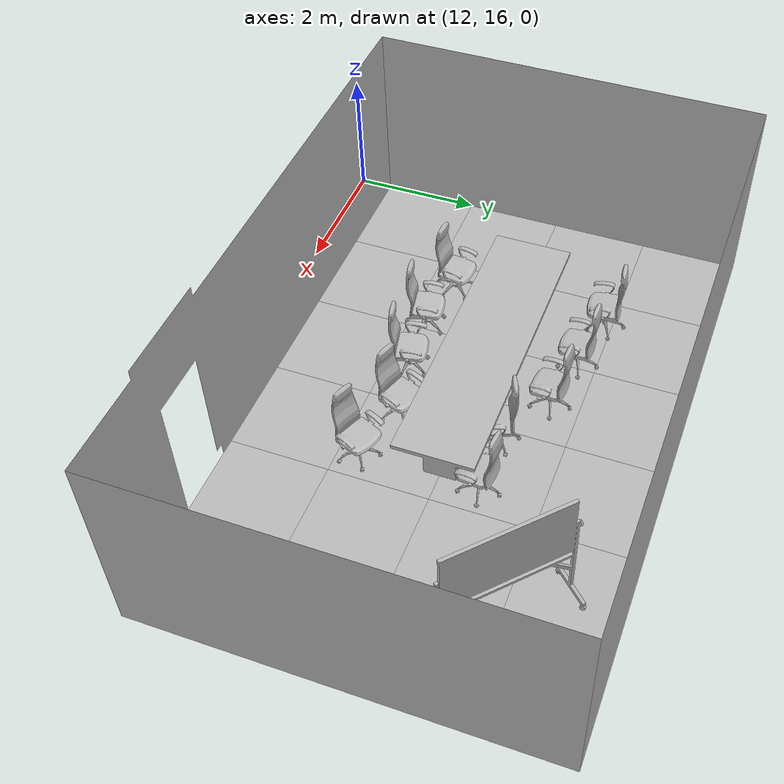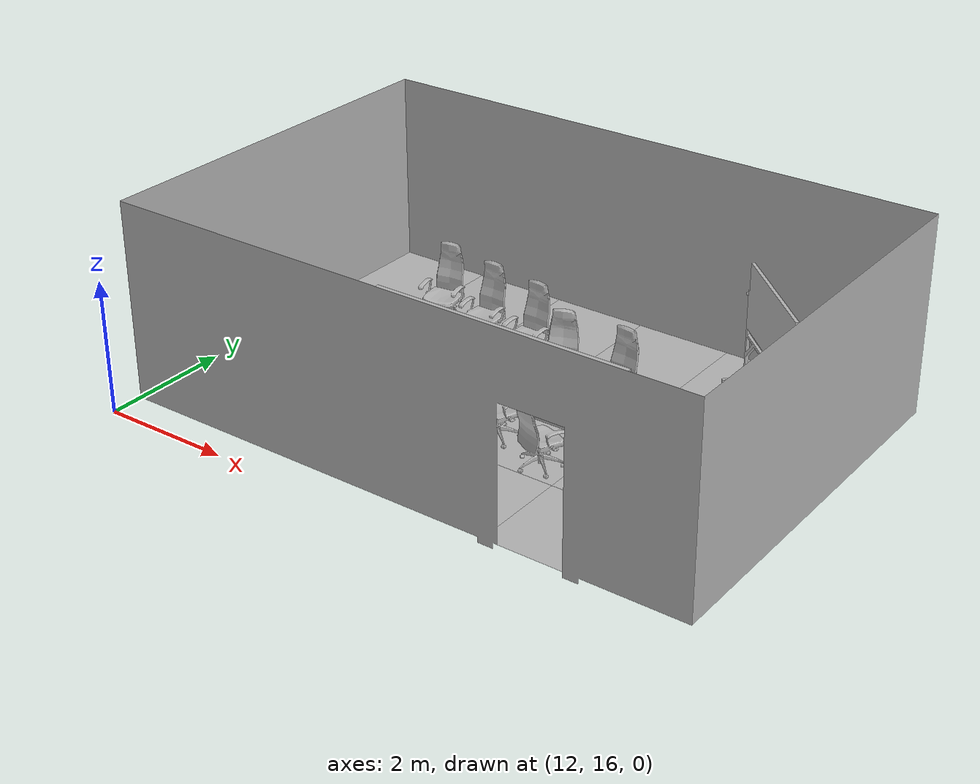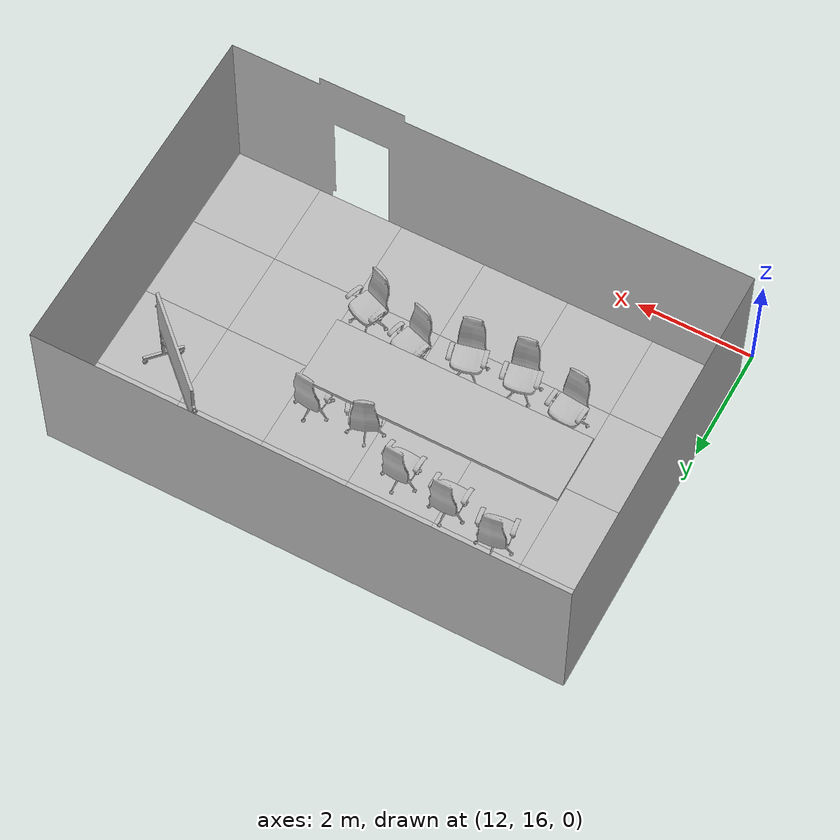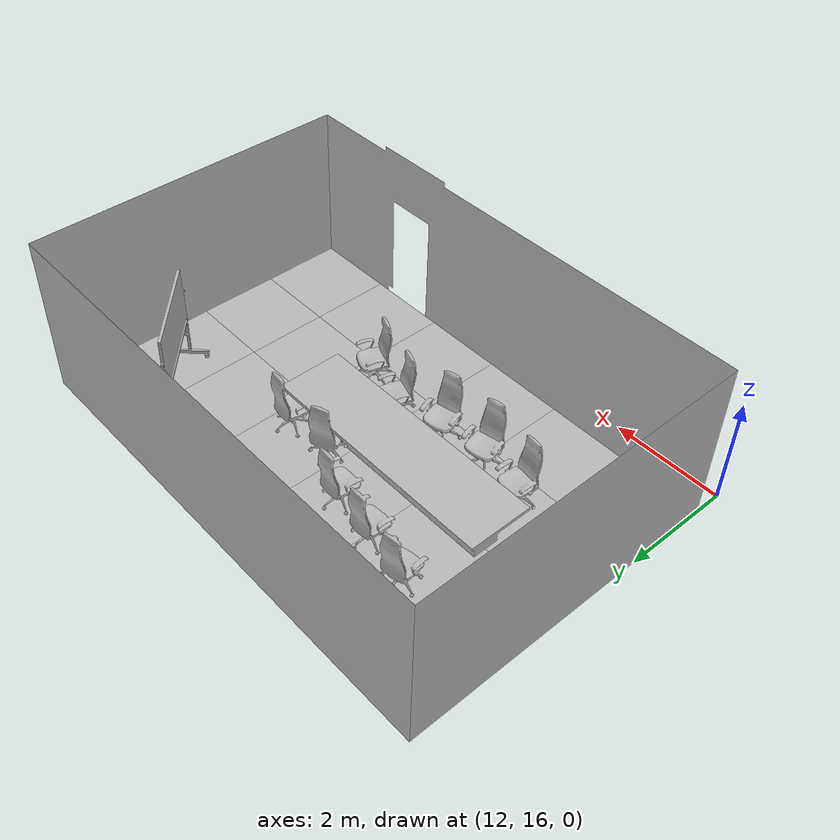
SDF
<sdf version="1.7">
 <world name="default">
  <model name="PublicMeetingRoomA">
   <static>1</static>
   <pose>18 16.5 0 0 -0 3.14159</pose>
   <link name="link">
    <collision name="right_of_door">
     <pose>2.88 0.05 1.5 0 -0 0</pose>
     <geometry><box><size>6.24 0.1 3</size></box></geometry>
    </collision>
    <collision name="left_of_door">
     <pose>-2.13 0.05 1.5 0 -0 0</pose>
     <geometry><box><size>1.74 0.1 3</size></box></geometry>
    </collision>
    <collision name="top_of_door">
     <pose>-0.75 0.05 2.55 0 -0 0</pose>
     <geometry><box><size>1.5 0.1 0.9</size></box></geometry>
    </collision>
    <collision name="right">
     <pose>6.05 -3 1.5 0 -0 0</pose>
     <geometry><box><size>0.1 6 3</size></box></geometry>
    </collision>
    <collision name="left">
     <pose>-3.05 -3 1.5 0 -0 0</pose>
     <geometry><box><size>0.1 6 3</size></box></geometry>
    </collision>
    <collision name="back">
     <pose>1.5 -6.05 1.5 0 -0 0</pose>
     <geometry><box><size>9 0.1 3</size></box></geometry>
    </collision>
    <visual name="visual">
     <geometry>
      <mesh><uri>model://media/meshes/meeting_room_large.obj</uri><scale>0.01 0.01 0.01</scale></mesh>
     </geometry>
    </visual>
    <visual name="floor_-1_-3">
     <pose>-1.5 -4.5 0 0 -0 0</pose>
     <geometry><mesh><uri>model://media/meshes/carpet.obj</uri><scale>0.01 0.01 0.01</scale></mesh></geometry>
    </visual>
    <visual name="floor_-1_-2">
     <pose>-1.5 -3 0 0 -0 0</pose>
     <geometry><mesh><uri>model://media/meshes/carpet.obj</uri><scale>0.01 0.01 0.01</scale></mesh></geometry>
    </visual>
    <visual name="floor_-1_-1">
     <pose>-1.5 -1.5 0 0 -0 0</pose>
     <geometry><mesh><uri>model://media/meshes/carpet.obj</uri><scale>0.01 0.01 0.01</scale></mesh></geometry>
    </visual>
    <visual name="floor_-1_0">
     <pose>-1.5 0 0 0 -0 0</pose>
     <geometry><mesh><uri>model://media/meshes/carpet.obj</uri><scale>0.01 0.01 0.01</scale></mesh></geometry>
    </visual>
    <visual name="floor_0_-3">
     <pose>0 -4.5 0 0 -0 0</pose>
     <geometry><mesh><uri>model://media/meshes/carpet.obj</uri><scale>0.01 0.01 0.01</scale></mesh></geometry>
    </visual>
    <visual name="floor_0_-2">
     <pose>0 -3 0 0 -0 0</pose>
     <geometry><mesh><uri>model://media/meshes/carpet.obj</uri><scale>0.01 0.01 0.01</scale></mesh></geometry>
    </visual>
    <visual name="floor_0_-1">
     <pose>0 -1.5 0 0 -0 0</pose>
     <geometry><mesh><uri>model://media/meshes/carpet.obj</uri><scale>0.01 0.01 0.01</scale></mesh></geometry>
    </visual>
    <visual name="floor_0_0">
     <geometry><mesh><uri>model://media/meshes/carpet.obj</uri><scale>0.01 0.01 0.01</scale></mesh></geometry>
    </visual>
    <visual name="floor_1_-3">
     <pose>1.5 -4.5 0 0 -0 0</pose>
     <geometry><mesh><uri>model://media/meshes/carpet.obj</uri><scale>0.01 0.01 0.01</scale></mesh></geometry>
    </visual>
    <visual name="floor_1_-2">
     <pose>1.5 -3 0 0 -0 0</pose>
     <geometry><mesh><uri>model://media/meshes/carpet.obj</uri><scale>0.01 0.01 0.01</scale></mesh></geometry>
    </visual>
    <visual name="floor_1_-1">
     <pose>1.5 -1.5 0 0 -0 0</pose>
     <geometry><mesh><uri>model://media/meshes/carpet.obj</uri><scale>0.01 0.01 0.01</scale></mesh></geometry>
    </visual>
    <visual name="floor_1_0">
     <pose>1.5 0 0 0 -0 0</pose>
     <geometry><mesh><uri>model://media/meshes/carpet.obj</uri><scale>0.01 0.01 0.01</scale></mesh></geometry>
    </visual>
    <visual name="floor_2_-3">
     <pose>3 -4.5 0 0 -0 0</pose>
     <geometry><mesh><uri>model://media/meshes/carpet.obj</uri><scale>0.01 0.01 0.01</scale></mesh></geometry>
    </visual>
    <visual name="floor_2_-2">
     <pose>3 -3 0 0 -0 0</pose>
     <geometry><mesh><uri>model://media/meshes/carpet.obj</uri><scale>0.01 0.01 0.01</scale></mesh></geometry>
    </visual>
    <visual name="floor_2_-1">
     <pose>3 -1.5 0 0 -0 0</pose>
     <geometry><mesh><uri>model://media/meshes/carpet.obj</uri><scale>0.01 0.01 0.01</scale></mesh></geometry>
    </visual>
    <visual name="floor_2_0">
     <pose>3 0 0 0 -0 0</pose>
     <geometry><mesh><uri>model://media/meshes/carpet.obj</uri><scale>0.01 0.01 0.01</scale></mesh></geometry>
    </visual>
    <visual name="floor_3_-3">
     <pose>4.5 -4.5 0 0 -0 0</pose>
     <geometry><mesh><uri>model://media/meshes/carpet.obj</uri><scale>0.01 0.01 0.01</scale></mesh></geometry>
    </visual>
    <visual name="floor_3_-2">
     <pose>4.5 -3 0 0 -0 0</pose>
     <geometry><mesh><uri>model://media/meshes/carpet.obj</uri><scale>0.01 0.01 0.01</scale></mesh></geometry>
    </visual>
    <visual name="floor_3_-1">
     <pose>4.5 -1.5 0 0 -0 0</pose>
     <geometry><mesh><uri>model://media/meshes/carpet.obj</uri><scale>0.01 0.01 0.01</scale></mesh></geometry>
    </visual>
    <visual name="floor_3_0">
     <pose>4.5 0 0 0 -0 0</pose>
     <geometry><mesh><uri>model://media/meshes/carpet.obj</uri><scale>0.01 0.01 0.01</scale></mesh></geometry>
    </visual>
    <visual name="floor_4_-3">
     <pose>6 -4.5 0 0 -0 0</pose>
     <geometry><mesh><uri>model://media/meshes/carpet.obj</uri><scale>0.01 0.01 0.01</scale></mesh></geometry>
    </visual>
    <visual name="floor_4_-2">
     <pose>6 -3 0 0 -0 0</pose>
     <geometry><mesh><uri>model://media/meshes/carpet.obj</uri><scale>0.01 0.01 0.01</scale></mesh></geometry>
    </visual>
    <visual name="floor_4_-1">
     <pose>6 -1.5 0 0 -0 0</pose>
     <geometry><mesh><uri>model://media/meshes/carpet.obj</uri><scale>0.01 0.01 0.01</scale></mesh></geometry>
    </visual>
    <visual name="floor_4_0">
     <pose>6 0 0 0 -0 0</pose>
     <geometry><mesh><uri>model://media/meshes/carpet.obj</uri><scale>0.01 0.01 0.01</scale></mesh></geometry>
    </visual>
   </link>
   <model name="table_and_chairs">
    <pose>2.4 -3 0 0 -0 0</pose>
    <frame name="conference_table_large::__model__" attached_to="conference_table_large::link">
     <pose relative_to="__model__">0 0 0 0 -0 0</pose>
    </frame>
    <static>1</static>
    <link name="conference_table_large::link">
     <collision name="collision">
      <pose>-0.000328 -0.000776 0.367474 0 -0 0</pose>
      <geometry><box><size>4.52032 1.21763 0.742359</size></box></geometry>
     </collision>
     <visual name="visual">
      <geometry>
       <mesh>
        <uri>model://conference_table_large/meshes/conference_table_large.obj</uri>
        <scale>0.01 0.01 0.01</scale>
       </mesh>
      </geometry>
     </visual>
     <pose relative_to="conference_table_large::__model__">0 0 0 0 -0 0</pose>
    </link>
    <frame name="chair_-2.0_-0.5890062968068516::__model__" attached_to="chair_-2.0_-0.5890062968068516::link">
     <pose relative_to="__model__">-2 -0.589006 0 0 -0 3.05005</pose>
    </frame>
    <static>1</static>
    <link name="chair_-2.0_-0.5890062968068516::link">
     <collision name="collision">
      <pose>0.001581 0.000308 0.612847 0 -0 0</pose>
      <geometry><cylinder><radius>0.33</radius><length>1.23</length></cylinder></geometry>
     </collision>
     <visual name="visual">
      <geometry>
       <mesh><uri>model://desk_chair/meshes/desk_chair.obj</uri><scale>0.01 0.01 0.01</scale></mesh>
      </geometry>
     </visual>
     <pose relative_to="chair_-2.0_-0.5890062968068516::__model__">0 0 0 0 -0 0</pose>
    </link>
    <frame name="chair_-2.0_1.2014877267539386::__model__" attached_to="chair_-2.0_1.2014877267539386::link">
     <pose relative_to="__model__">-2 1.20149 0 0 0 -0.386062</pose>
    </frame>
    <static>1</static>
    <link name="chair_-2.0_1.2014877267539386::link">
     <collision name="collision">
      <pose>0.001581 0.000308 0.612847 0 -0 0</pose>
      <geometry><cylinder><radius>0.33</radius><length>1.23</length></cylinder></geometry>
     </collision>
     <visual name="visual">
      <geometry>
       <mesh><uri>model://desk_chair/meshes/desk_chair.obj</uri><scale>0.01 0.01 0.01</scale></mesh>
      </geometry>
     </visual>
     <pose relative_to="chair_-2.0_1.2014877267539386::__model__">0 0 0 0 -0 0</pose>
    </link>
    <frame name="chair_-1.1_-0.5509668736600725::__model__" attached_to="chair_-1.1_-0.5509668736600725::link">
     <pose relative_to="__model__">-1.1 -0.550967 0 0 -0 -2.76012</pose>
    </frame>
    <static>1</static>
    <link name="chair_-1.1_-0.5509668736600725::link">
     <collision name="collision">
      <pose>0.001581 0.000308 0.612847 0 -0 0</pose>
      <geometry><cylinder><radius>0.33</radius><length>1.23</length></cylinder></geometry>
     </collision>
     <visual name="visual">
      <geometry>
       <mesh><uri>model://desk_chair/meshes/desk_chair.obj</uri><scale>0.01 0.01 0.01</scale></mesh>
      </geometry>
     </visual>
     <pose relative_to="chair_-1.1_-0.5509668736600725::__model__">0 0 0 0 -0 0</pose>
    </link>
    <frame name="chair_-1.1_0.9350717371031249::__model__" attached_to="chair_-1.1_0.9350717371031249::link">
     <pose relative_to="__model__">-1.1 0.935072 0 0 0 -0.324973</pose>
    </frame>
    <static>1</static>
    <link name="chair_-1.1_0.9350717371031249::link">
     <collision name="collision">
      <pose>0.001581 0.000308 0.612847 0 -0 0</pose>
      <geometry><cylinder><radius>0.33</radius><length>1.23</length></cylinder></geometry>
     </collision>
     <visual name="visual">
      <geometry>
       <mesh><uri>model://desk_chair/meshes/desk_chair.obj</uri><scale>0.01 0.01 0.01</scale></mesh>
      </geometry>
     </visual>
     <pose relative_to="chair_-1.1_0.9350717371031249::__model__">0 0 0 0 -0 0</pose>
    </link>
    <frame name="chair_-0.19999999999999996_-1.0515195050976136::__model__" attached_to="chair_-0.19999999999999996_-1.0515195050976136::link">
     <pose relative_to="__model__">-0.2 -1.05152 0 0 -0 3.0938</pose>
    </frame>
    <static>1</static>
    <link name="chair_-0.19999999999999996_-1.0515195050976136::link">
     <collision name="collision">
      <pose>0.001581 0.000308 0.612847 0 -0 0</pose>
      <geometry><cylinder><radius>0.33</radius><length>1.23</length></cylinder></geometry>
     </collision>
     <visual name="visual">
      <geometry>
       <mesh><uri>model://desk_chair/meshes/desk_chair.obj</uri><scale>0.01 0.01 0.01</scale></mesh>
      </geometry>
     </visual>
     <pose relative_to="chair_-0.19999999999999996_-1.0515195050976136::__model__">0 0 0 0 -0 0</pose>
    </link>
    <frame name="chair_-0.19999999999999996_1.1431031401073726::__model__" attached_to="chair_-0.19999999999999996_1.1431031401073726::link">
     <pose relative_to="__model__">-0.2 1.1431 0 0 -0 0.231099</pose>
    </frame>
    <static>1</static>
    <link name="chair_-0.19999999999999996_1.1431031401073726::link">
     <collision name="collision">
      <pose>0.001581 0.000308 0.612847 0 -0 0</pose>
      <geometry><cylinder><radius>0.33</radius><length>1.23</length></cylinder></geometry>
     </collision>
     <visual name="visual">
      <geometry>
       <mesh><uri>model://desk_chair/meshes/desk_chair.obj</uri><scale>0.01 0.01 0.01</scale></mesh>
      </geometry>
     </visual>
     <pose relative_to="chair_-0.19999999999999996_1.1431031401073726::__model__">0 0 0 0 -0 0</pose>
    </link>
    <frame name="chair_0.7000000000000002_-1.20445754062261::__model__" attached_to="chair_0.7000000000000002_-1.20445754062261::link">
     <pose relative_to="__model__">0.7 -1.20446 0 0 -0 3.13901</pose>
    </frame>
    <static>1</static>
    <link name="chair_0.7000000000000002_-1.20445754062261::link">
     <collision name="collision">
      <pose>0.001581 0.000308 0.612847 0 -0 0</pose>
      <geometry><cylinder><radius>0.33</radius><length>1.23</length></cylinder></geometry>
     </collision>
     <visual name="visual">
      <geometry>
       <mesh><uri>model://desk_chair/meshes/desk_chair.obj</uri><scale>0.01 0.01 0.01</scale></mesh>
      </geometry>
     </visual>
     <pose relative_to="chair_0.7000000000000002_-1.20445754062261::__model__">0 0 0 0 -0 0</pose>
    </link>
    <frame name="chair_0.7000000000000002_1.2204583625989422::__model__" attached_to="chair_0.7000000000000002_1.2204583625989422::link">
     <pose relative_to="__model__">0.7 1.22046 0 0 -0 0.186876</pose>
    </frame>
    <static>1</static>
    <link name="chair_0.7000000000000002_1.2204583625989422::link">
     <collision name="collision">
      <pose>0.001581 0.000308 0.612847 0 -0 0</pose>
      <geometry><cylinder><radius>0.33</radius><length>1.23</length></cylinder></geometry>
     </collision>
     <visual name="visual">
      <geometry>
       <mesh><uri>model://desk_chair/meshes/desk_chair.obj</uri><scale>0.01 0.01 0.01</scale></mesh>
      </geometry>
     </visual>
     <pose relative_to="chair_0.7000000000000002_1.2204583625989422::__model__">0 0 0 0 -0 0</pose>
    </link>
    <frame name="chair_1.6_-1.374532506452085::__model__" attached_to="chair_1.6_-1.374532506452085::link">
     <pose relative_to="__model__">1.6 -1.37453 0 0 -0 -2.99726</pose>
    </frame>
    <static>1</static>
    <link name="chair_1.6_-1.374532506452085::link">
     <collision name="collision">
      <pose>0.001581 0.000308 0.612847 0 -0 0</pose>
      <geometry><cylinder><radius>0.33</radius><length>1.23</length></cylinder></geometry>
     </collision>
     <visual name="visual">
      <geometry>
       <mesh><uri>model://desk_chair/meshes/desk_chair.obj</uri><scale>0.01 0.01 0.01</scale></mesh>
      </geometry>
     </visual>
     <pose relative_to="chair_1.6_-1.374532506452085::__model__">0 0 0 0 -0 0</pose>
    </link>
    <frame name="chair_1.6_1.0598994149931653::__model__" attached_to="chair_1.6_1.0598994149931653::link">
     <pose relative_to="__model__">1.6 1.0599 0 0 0 -0.105255</pose>
    </frame>
    <static>1</static>
    <link name="chair_1.6_1.0598994149931653::link">
     <collision name="collision">
      <pose>0.001581 0.000308 0.612847 0 -0 0</pose>
      <geometry><cylinder><radius>0.33</radius><length>1.23</length></cylinder></geometry>
     </collision>
     <visual name="visual">
      <geometry>
       <mesh><uri>model://desk_chair/meshes/desk_chair.obj</uri><scale>0.01 0.01 0.01</scale></mesh>
      </geometry>
     </visual>
     <pose relative_to="chair_1.6_1.0598994149931653::__model__">0 0 0 0 -0 0</pose>
    </link>
   </model>
   <frame name="whiteboard::__model__" attached_to="whiteboard::link">
    <pose relative_to="__model__">-1.425 -4.575 0 0 -0 2.39265</pose>
   </frame>
   <static>1</static>
   <link name="whiteboard::link">
    <collision name="collision">
     <pose>-0.010992 -0.000776 0.998212 0 -0 0</pose>
     <geometry><box><size>1.97372 0.69682 2.02507</size></box></geometry>
    </collision>
    <visual name="visual">
     <geometry>
      <mesh><uri>model://whiteboard/meshes/whiteboard.obj</uri><scale>0.01 0.01 0.01</scale></mesh>
     </geometry>
    </visual>
    <pose relative_to="whiteboard::__model__">0 0 0 0 -0 0</pose>
   </link>
  </model>
 </world>
</sdf>
